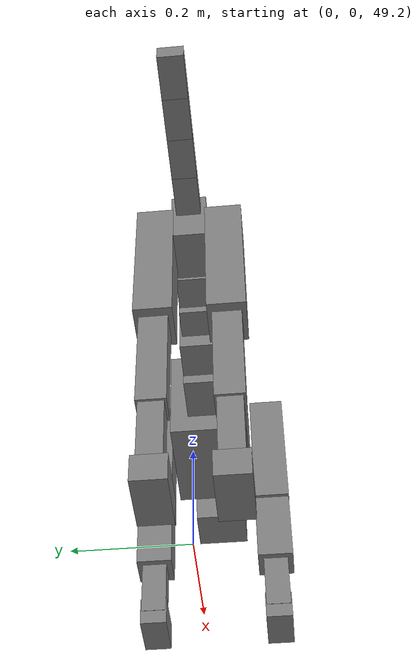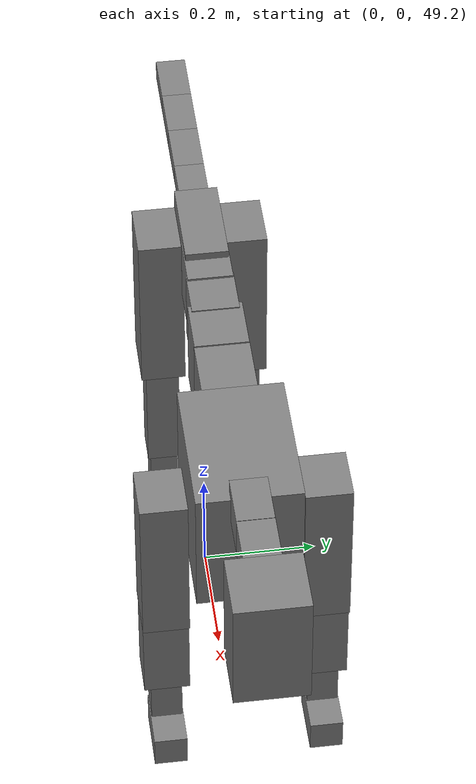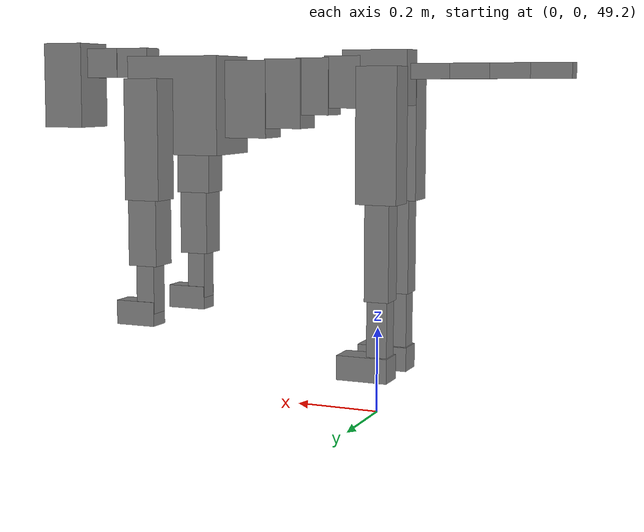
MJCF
<mujoco model="dog">

    <default>
        <joint armature="0.02" stiffness="1" damping="0.2" limited="true"/>
        <geom condim="3" friction="1 0.05 0.05" margin="0.01"/>
        <motor ctrllimited="true" ctrlrange="-1.0 1.0" forcelimited="true" gear="50"/>
    </default>

    <compiler inertiafromgeom="true" angle="radian"/>

    <option timestep="0.016" iterations="50" tolerance="1e-10" solver="Newton" jacobian="dense" cone="pyramidal"/>

    <size nconmax="20000" njmax="60000" nstack="5000000"/>
    <visual>
        <map force="0.1" zfar="30"/>
        <rgba haze="0.15 0.25 0.35 1"/>
        <quality shadowsize="2048"/>
        <global offwidth="800" offheight="800"/>
    </visual>

    <asset>
        <texture type="skybox" builtin="gradient" rgb1="0.3 0.5 0.7" rgb2="0 0 0" width="512" height="512"/>
        <texture name="texplane" type="2d" builtin="checker" rgb1=".2 .3 .4" rgb2=".1 0.15 0.2" width="512" height="512"
                 mark="cross" markrgb=".8 .8 .8"/>
        <texture name="texgeom" type="cube" builtin="flat" mark="cross" width="127" height="1278" rgb1="0.8 0.6 0.4"
                 rgb2="0.8 0.6 0.4" markrgb="1 1 1" random="0.01"/>

        <material name="matplane" reflectance="0.3" texture="texplane" texrepeat="1 1" texuniform="true"/>
        <material name="matgeom" texture="texgeom" texuniform="true" rgba="0.8 0.6 .4 1"/>
    </asset>

    <worldbody>
        <geom name="floor" pos="0 0 0" size="0 0 .25" type="plane" material="matplane" condim="3"/>

        <light directional="false" diffuse=".2 .2 .2" specular="0 0 0" pos="0 0 5" dir="0 0 -1" castshadow="false"/>
        <light mode="targetbodycom" target="torso" directional="false" diffuse=".8 .8 .8" specular="0.3 0.3 0.3"
               pos="0 0 4.0" dir="0 0 -1"/>

        <body name="root" pos="0 0 50">
            <freejoint name="root_1"/>
            <geom type="box" pos="0 0 -0.02" size="0.0774  0.0358  0.063" density="2030"/>

            <body name="spine1" pos="0.054 0 0">
                <joint name="spine1_y" axis="0 1 0" range="0 0.7" limited="true"/>
                <geom type="box" pos="0.02375 0 -0.03" size="0.04375  0.0375  0.05985" density="2030"/>

                <body name="spine2" pos="0.0612 0 0">
                    <joint name="spine2_y" axis="0 1 0" range="-0.15 0.15" limited="true"/>
                    <geom type="box" pos="0.03555  0  -0.04" size="0.04055  0.039  0.06615" density="2030"/>

                    <body name="spine3" pos="0.0730 0 0">
                        <joint name="spine3_y" axis="0 1 0" range="-0.15 0.15" limited="true"/>
                        <geom type="box" pos="0.03555  0  -0.057" size="0.04555  0.0445  0.081" density="2030"/>

                        <body name="spine4" pos="0.0780 0 0">
                            <joint name="spine4_y" axis="0 1 0" range="-0.15 0.15" limited="true"/>
                            <geom type="box" pos="0.05265  0  -0.07" size="0.05265  0.045  0.09135" density="2030"/>

                            <body name="torso" pos="0.1082 0 0">
                                <joint name="torso_y" axis="0 1 0" range="-0.15 0.15" limited="true"/>
                                <geom type="box" pos="0.11925  0  -0.085" size="0.11925  0.085  0.11745"
                                      density="2030"/>

                                <body name="neck1" pos="0.2160  0   0.0180">
                                    <joint name="neck1_y" axis="0 1 0" range="-1.2  -1" limited="true"/>
                                    <geom type="box" pos="0.0423  0  0" size="0.0423  0.03  0.036" density="2325"/>

                                    <body name="neck2" pos="0.0853  0  0">
                                        <joint name="neck2_y" axis="0 1 0" range="0.1  0" limited="true"/>
                                        <geom type="box" pos="0.0423  0  0" size="0.0423  0.03  0.036" density="2325"/>

                                        <body name="head" pos="0.0853  0  0">
                                            <joint name="head_y" axis="0 1 0" range="-0.3  -0.2" limited="true"/>
                                            <geom type="box" pos="0.0531  0  -0.055" size="0.0531  0.06  0.1044"
                                                  density="4030"/>

                                        </body>
                                    </body>
                                </body>

                                <body name="front_shoulder" pos="0.156  0   -0.0480">
                                    <joint name="front_shoulder_y" axis="0 1 0" range="-1 1.5" limited="true"/>
                                    <geom type="box" pos="0 0.13 -0.1163" size="0.0444  0.0380  0.1429" density="1158"/>
                                    <geom type="box" pos="0 -0.13 -0.1163" size="0.0444  0.0380  0.1429"
                                          density="1158"/>

                                    <body name="front_elbow" pos="0  0  -0.2326">
                                        <joint name="front_elbow_y" axis="0 1 0" range="-2 0" limited="true"/>
                                        <geom type="box" pos="0 0.13 -0.0910" size="0.0366  0.0374  0.0910"
                                              density="1081"/>
                                        <geom type="box" pos="0 -0.13 -0.0910" size="0.0366  0.0374  0.0910"
                                              density="1081"/>

                                        <body name="front_wrist" pos="0  0  -0.1820">
                                            <joint name="front_wrist_y" axis="0 1 0" range="-0.2 0" limited="true"/>
                                            <geom type="box" pos="0 0.13 -0.0511" size="0.0232  0.0257  0.0643"
                                                  density="1664"/>
                                            <geom type="box" pos="0 -0.13 -0.0511" size="0.0232  0.0257  0.0643"
                                                  density="1664"/>

                                            <body name="front_finger_end" pos="0  0  -0.1023">
                                                <joint name="front_finger_y" axis="0 1 0" range="-0.4 1"
                                                       limited="true"/>
                                                <geom type="box" pos="0.0272  0.13  -0.0140"
                                                      size="0.0499  0.0272  0.0290" density="1515"/>
                                                <geom type="box" pos="0.0272  -0.13  -0.0140"
                                                      size="0.0499  0.0272  0.0290" density="1515"/>

                                            </body>

                                        </body>
                                    </body>
                                </body>

                            </body>
                        </body>
                    </body>
                </body>
            </body>

            <body name="back_hip" pos="-0.03 0 -0.018">
                <joint name="back_hip_y" axis="0 1 0" range="-1.5 0.3" limited="true"/>
                <geom type="box" pos="0 0.07 -0.1311" size="0.0481  0.0377  0.1539" density="1154"/>
                <geom type="box" pos="0 -0.07 -0.1311" size="0.0481  0.0377  0.1539" density="1154"/>

                <body name="back_knee" pos="0  0  -0.2622">
                    <joint name="back_knee_y" axis="0 1 0" range="0 2.8" limited="true"/>
                    <geom type="box" pos="0 0.07 -0.1136" size="0.0288  0.0284  0.1292" density="1227"/>
                    <geom type="box" pos="0 -0.07 -0.1136" size="0.0288  0.0284  0.1292" density="1227"/>

                    <body name="back_ankle" pos="0  0  -0.2272">
                        <joint name="back_ankle_y" axis="0 1 0" range="-2.2 0" limited="true"/>
                        <geom type="box" pos="0 0.07 -0.0789" size="0.0240  0.0240  0.0901" density="1284"/>
                        <geom type="box" pos="0 -0.07 -0.0789" size="0.0240  0.0240  0.0901" density="1284"/>

                        <body name="back_toe_end" pos="0  0  -0.1578">
                            <joint name="back_toe_y" axis="0 1 0" range="-0.4 1" limited="true"/>
                            <geom type="box" pos="0.0329  0.07  -0.0134" size="0.0603  0.0329  0.0284" density="1515"/>
                            <geom type="box" pos="0.0329  -0.07  -0.0134" size="0.0603  0.0329  0.0284" density="1515"/>

                        </body>
                    </body>
                </body>
            </body>

            <body name="tail1" pos="-0.074 0 -0.006">
                <joint name="tail1_y" axis="0 1 0" range="-0.2 0.2" limited="true"/>
                <geom type="box" pos="-0.0536  0  0" size="0.045  0.025  0.0175" density="1587"/>

                <body name="tail2" pos="-0.09 0 0">
                    <joint name="tail2_y" axis="0 1 0" range="-0.2 0.2" limited="true"/>
                    <geom type="box" pos="-0.0536  0  0" size="0.045  0.025  0.0175" density="1587"/>

                    <body name="tail3" pos="-0.09 0 0">
                        <joint name="tail3_y" axis="0 1 0" range="-0.2 0.2" limited="true"/>
                        <geom type="box" pos="-0.0536  0  0" size="0.045  0.025  0.0175" density="1587"/>

                        <body name="tail4" pos="-0.09 0 0">
                            <joint name="tail4_y" axis="0 1 0" range="-0.2 0.2" limited="true"/>
                            <geom type="box" pos="-0.0536  0  0" size="0.045  0.025  0.0175" density="1587"/>

                        </body>
                    </body>
                </body>
            </body>
        </body>
    </worldbody>

    <actuator>
        <motor joint="spine1_y" forcerange="-150 150     "/>
        <motor joint="spine2_y" forcerange="-150 150     "/>
        <motor joint="spine3_y" forcerange="-150 150     "/>
        <motor joint="spine4_y" forcerange="-150 150     "/>
        <motor joint="torso_y" forcerange="-150 150     "/>
        <motor joint="neck1_y" forcerange="-100 100       "/>
        <motor joint="neck2_y" forcerange="-100 100       "/>
        <motor joint="head_y" forcerange="-150 150       "/>
        <motor joint="front_shoulder_y" forcerange="-173.05 180.06"/>
        <motor joint="front_elbow_y" forcerange="-176.23 195.74"/>
        <motor joint="front_wrist_y" forcerange="-146.80 59.20"/>
        <motor joint="front_finger_y" forcerange="-23.49 81.61"/>
        <motor joint="back_hip_y" forcerange="-334.22 368.95"/>
        <motor joint="back_knee_y" forcerange="-295.47 317.48"/>
        <motor joint="back_angle_y" forcerange="-132.04 151.18"/>
        <motor joint="back_toe_y" forcerange="-56.87 126.17"/>
        <motor joint="tail1_y" forcerange="-50 50     "/>
        <motor joint="tail2_y" forcerange="-50 50     "/>
        <motor joint="tail3_y" forcerange="-50 50     "/>
        <motor joint="tail4_y" forcerange="-50 50     "/>
    </actuator>
</mujoco>
